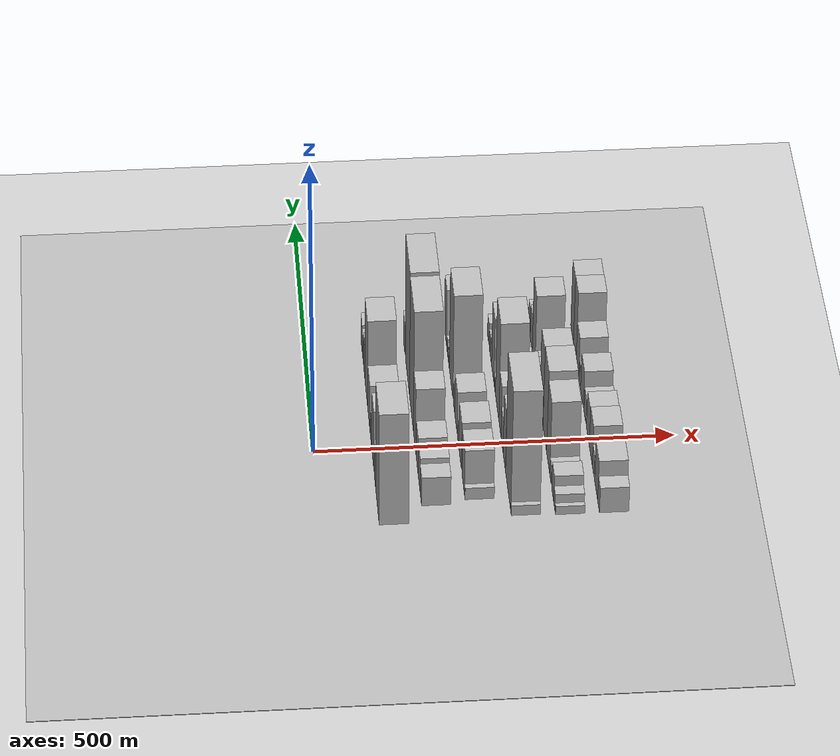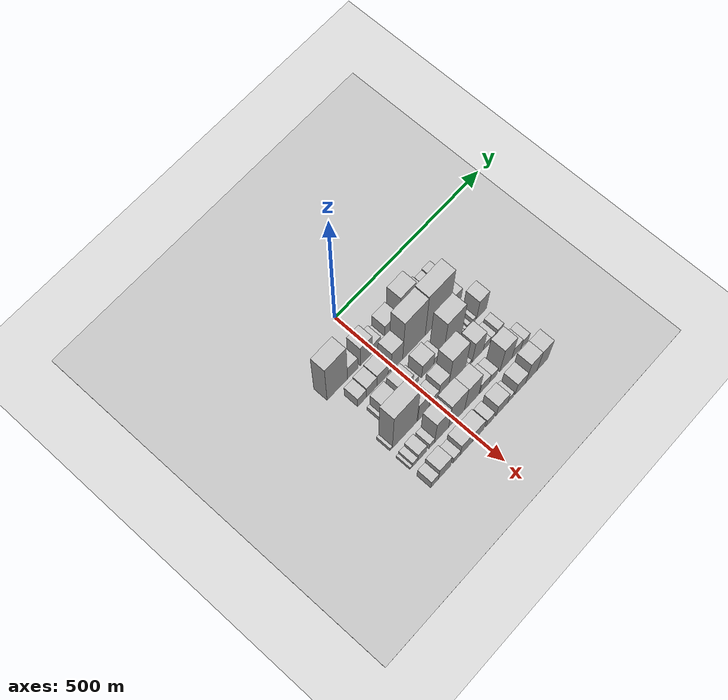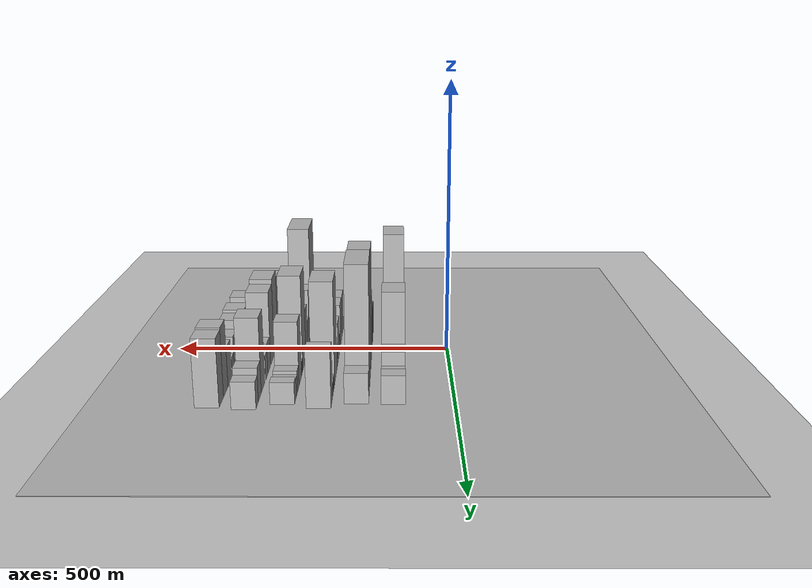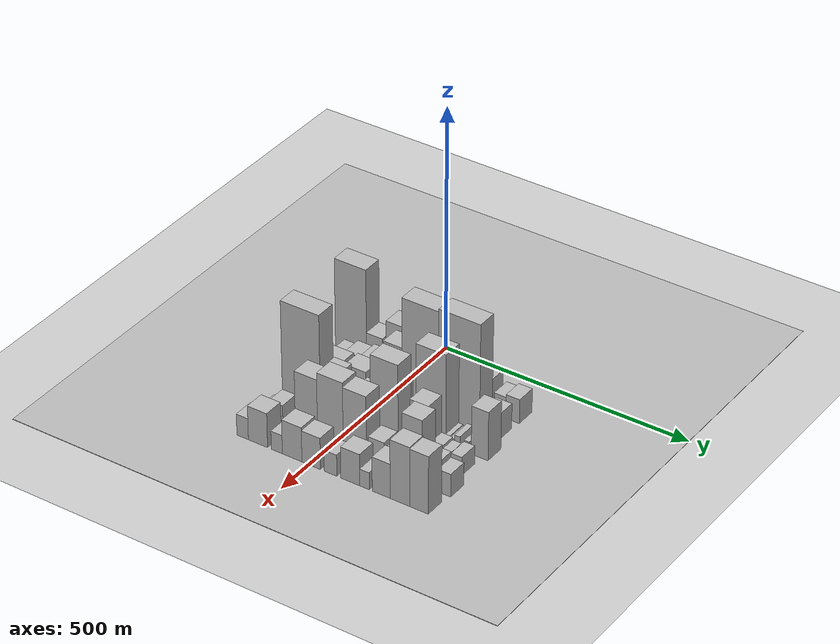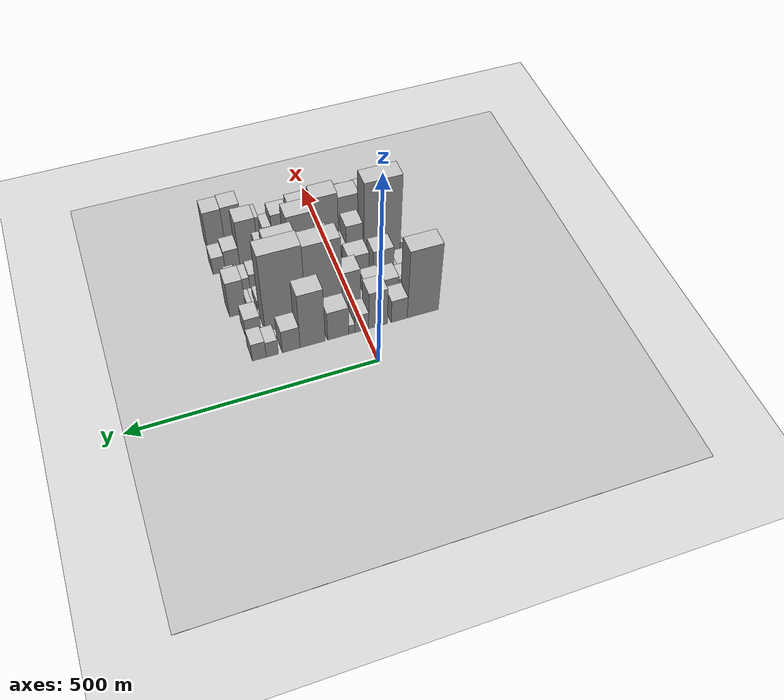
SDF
<sdf version="1.6">
 <world name="default">
  <include><name>ground_plane_1</name><uri>model://HANNAS_ground_plane</uri></include>
  <include>
   <name>ground_plane_2</name>
   <uri>model://HANNAS_ground_plane</uri>
   <pose>100 0 0  0 0 0</pose>
  </include>
  <model name="building_21">
   <static>1</static>
   <pose>100.0000 -122.6711 0 0.000000 0.000000 0.000000</pose>
   <link name="link">
    <pose>0 0 99.00 0 0 0</pose>
    <collision name="collision"><geometry><box><size>40.0000 66.9186 198.0000</size></box></geometry></collision>
    <visual name="visual">
     <cast_shadows>0</cast_shadows>
     <geometry><box><size>40.0000 66.9186 198.0000</size></box></geometry>
     <material>
      <script>
       <uri>model://HANNAS_wall/materials/scripts</uri>
       <uri>model://HANNAS_wall/materials/textures</uri>
       <name>vrc/HANNAS_wall</name>
      </script>
     </material>
    </visual>
   </link>
  </model>
  <model name="building_22">
   <static>1</static>
   <pose>100.0000 -72.0140 0 0.000000 0.000000 0.000000</pose>
   <link name="link">
    <pose>0 0 33.00 0 0 0</pose>
    <collision name="collision"><geometry><box><size>40.0000 34.3954 66.0000</size></box></geometry></collision>
    <visual name="visual">
     <cast_shadows>0</cast_shadows>
     <geometry><box><size>40.0000 34.3954 66.0000</size></box></geometry>
     <material>
      <script>
       <uri>model://HANNAS_wall/materials/scripts</uri>
       <uri>model://HANNAS_wall/materials/textures</uri>
       <name>vrc/HANNAS_wall</name>
      </script>
     </material>
    </visual>
   </link>
  </model>
  <model name="building_23">
   <static>1</static>
   <pose>100.0000 -27.0608 0 0.000000 0.000000 0.000000</pose>
   <link name="link">
    <pose>0 0 54.00 0 0 0</pose>
    <collision name="collision"><geometry><box><size>40.0000 39.5110 108.0000</size></box></geometry></collision>
    <visual name="visual">
     <cast_shadows>0</cast_shadows>
     <geometry><box><size>40.0000 39.5110 108.0000</size></box></geometry>
     <material>
      <script>
       <uri>model://HANNAS_wall/materials/scripts</uri>
       <uri>model://HANNAS_wall/materials/textures</uri>
       <name>vrc/HANNAS_wall</name>
      </script>
     </material>
    </visual>
   </link>
  </model>
  <model name="building_24">
   <static>1</static>
   <pose>100.0000 6.9616 0 0.000000 0.000000 0.000000</pose>
   <link name="link">
    <pose>0 0 25.50 0 0 0</pose>
    <collision name="collision"><geometry><box><size>40.0000 28.5338 51.0000</size></box></geometry></collision>
    <visual name="visual">
     <cast_shadows>0</cast_shadows>
     <geometry><box><size>40.0000 28.5338 51.0000</size></box></geometry>
     <material>
      <script>
       <uri>model://HANNAS_wall/materials/scripts</uri>
       <uri>model://HANNAS_wall/materials/textures</uri>
       <name>vrc/HANNAS_wall</name>
      </script>
     </material>
    </visual>
   </link>
  </model>
  <model name="building_25">
   <static>1</static>
   <pose>100.0000 27.7812 0 0.000000 0.000000 0.000000</pose>
   <link name="link">
    <pose>0 0 13.50 0 0 0</pose>
    <collision name="collision"><geometry><box><size>40.0000 13.1054 27.0000</size></box></geometry></collision>
    <visual name="visual">
     <cast_shadows>0</cast_shadows>
     <geometry><box><size>40.0000 13.1054 27.0000</size></box></geometry>
     <material>
      <script>
       <uri>model://HANNAS_wall/materials/scripts</uri>
       <uri>model://HANNAS_wall/materials/textures</uri>
       <name>vrc/HANNAS_wall</name>
      </script>
     </material>
    </visual>
   </link>
  </model>
  <model name="building_26">
   <static>1</static>
   <pose>100.0000 56.3703 0 0.000000 0.000000 0.000000</pose>
   <link name="link">
    <pose>0 0 42.00 0 0 0</pose>
    <collision name="collision"><geometry><box><size>40.0000 44.0729 84.0000</size></box></geometry></collision>
    <visual name="visual">
     <cast_shadows>0</cast_shadows>
     <geometry><box><size>40.0000 44.0729 84.0000</size></box></geometry>
     <material>
      <script>
       <uri>model://HANNAS_wall/materials/scripts</uri>
       <uri>model://HANNAS_wall/materials/textures</uri>
       <name>vrc/HANNAS_wall</name>
      </script>
     </material>
    </visual>
   </link>
  </model>
  <model name="building_27">
   <static>1</static>
   <pose>100.0000 109.1846 0 0.000000 0.000000 0.000000</pose>
   <link name="link">
    <pose>0 0 79.50 0 0 0</pose>
    <collision name="collision"><geometry><box><size>40.0000 51.5556 159.0000</size></box></geometry></collision>
    <visual name="visual">
     <cast_shadows>0</cast_shadows>
     <geometry><box><size>40.0000 51.5556 159.0000</size></box></geometry>
     <material>
      <script>
       <uri>model://HANNAS_wall/materials/scripts</uri>
       <uri>model://HANNAS_wall/materials/textures</uri>
       <name>vrc/HANNAS_wall</name>
      </script>
     </material>
    </visual>
   </link>
  </model>
  <model name="building_28">
   <static>1</static>
   <pose>100.0000 153.1105 0 0.000000 0.000000 0.000000</pose>
   <link name="link">
    <pose>0 0 33.00 0 0 0</pose>
    <collision name="collision"><geometry><box><size>40.0000 36.2963 66.0000</size></box></geometry></collision>
    <visual name="visual">
     <cast_shadows>0</cast_shadows>
     <geometry><box><size>40.0000 36.2963 66.0000</size></box></geometry>
     <material>
      <script>
       <uri>model://HANNAS_wall/materials/scripts</uri>
       <uri>model://HANNAS_wall/materials/textures</uri>
       <name>vrc/HANNAS_wall</name>
      </script>
     </material>
    </visual>
   </link>
  </model>
  <model name="building_29">
   <static>1</static>
   <pose>100.0000 191.5842 0 0.000000 0.000000 0.000000</pose>
   <link name="link">
    <pose>0 0 22.50 0 0 0</pose>
    <collision name="collision"><geometry><box><size>40.0000 24.6511 45.0000</size></box></geometry></collision>
    <visual name="visual">
     <cast_shadows>0</cast_shadows>
     <geometry><box><size>40.0000 24.6511 45.0000</size></box></geometry>
     <material>
      <script>
       <uri>model://HANNAS_wall/materials/scripts</uri>
       <uri>model://HANNAS_wall/materials/textures</uri>
       <name>vrc/HANNAS_wall</name>
      </script>
     </material>
    </visual>
   </link>
  </model>
  <model name="building_30">
   <static>1</static>
   <pose>100.0000 217.8195 0 0.000000 0.000000 0.000000</pose>
   <link name="link">
    <pose>0 0 25.50 0 0 0</pose>
    <collision name="collision"><geometry><box><size>40.0000 27.8194 51.0000</size></box></geometry></collision>
    <visual name="visual">
     <cast_shadows>0</cast_shadows>
     <geometry><box><size>40.0000 27.8194 51.0000</size></box></geometry>
     <material>
      <script>
       <uri>model://HANNAS_wall/materials/scripts</uri>
       <uri>model://HANNAS_wall/materials/textures</uri>
       <name>vrc/HANNAS_wall</name>
      </script>
     </material>
    </visual>
   </link>
  </model>
  <model name="building_80">
   <static>1</static>
   <pose>160.0000 -107.2405 0 0.000000 0.000000 0.000000</pose>
   <link name="link">
    <pose>0 0 25.50 0 0 0</pose>
    <collision name="collision"><geometry><box><size>40.0000 29.0225 51.0000</size></box></geometry></collision>
    <visual name="visual">
     <cast_shadows>0</cast_shadows>
     <geometry><box><size>40.0000 29.0225 51.0000</size></box></geometry>
     <material>
      <script>
       <uri>model://HANNAS_wall/materials/scripts</uri>
       <uri>model://HANNAS_wall/materials/textures</uri>
       <name>vrc/HANNAS_wall</name>
      </script>
     </material>
    </visual>
   </link>
  </model>
  <model name="building_81">
   <static>1</static>
   <pose>160.0000 -75.3001 0 0.000000 0.000000 0.000000</pose>
   <link name="link">
    <pose>0 0 30.00 0 0 0</pose>
    <collision name="collision"><geometry><box><size>40.0000 34.8581 60.0000</size></box></geometry></collision>
    <visual name="visual">
     <cast_shadows>0</cast_shadows>
     <geometry><box><size>40.0000 34.8581 60.0000</size></box></geometry>
     <material>
      <script>
       <uri>model://HANNAS_wall/materials/scripts</uri>
       <uri>model://HANNAS_wall/materials/textures</uri>
       <name>vrc/HANNAS_wall</name>
      </script>
     </material>
    </visual>
   </link>
  </model>
  <model name="building_82">
   <static>1</static>
   <pose>160.0000 -39.7103 0 0.000000 0.000000 0.000000</pose>
   <link name="link">
    <pose>0 0 33.00 0 0 0</pose>
    <collision name="collision"><geometry><box><size>40.0000 36.3216 66.0000</size></box></geometry></collision>
    <visual name="visual">
     <cast_shadows>0</cast_shadows>
     <geometry><box><size>40.0000 36.3216 66.0000</size></box></geometry>
     <material>
      <script>
       <uri>model://HANNAS_wall/materials/scripts</uri>
       <uri>model://HANNAS_wall/materials/textures</uri>
       <name>vrc/HANNAS_wall</name>
      </script>
     </material>
    </visual>
   </link>
  </model>
  <model name="building_83">
   <static>1</static>
   <pose>160.0000 -16.5000 0 0.000000 0.000000 0.000000</pose>
   <link name="link">
    <pose>0 0 10.50 0 0 0</pose>
    <collision name="collision"><geometry><box><size>40.0000 10.0989 21.0000</size></box></geometry></collision>
    <visual name="visual">
     <cast_shadows>0</cast_shadows>
     <geometry><box><size>40.0000 10.0989 21.0000</size></box></geometry>
     <material>
      <script>
       <uri>model://HANNAS_wall/materials/scripts</uri>
       <uri>model://HANNAS_wall/materials/textures</uri>
       <name>vrc/HANNAS_wall</name>
      </script>
     </material>
    </visual>
   </link>
  </model>
  <model name="building_84">
   <static>1</static>
   <pose>160.0000 8.0085 0 0.000000 0.000000 0.000000</pose>
   <link name="link">
    <pose>0 0 57.00 0 0 0</pose>
    <collision name="collision"><geometry><box><size>40.0000 38.9181 114.0000</size></box></geometry></collision>
    <visual name="visual">
     <cast_shadows>0</cast_shadows>
     <geometry><box><size>40.0000 38.9181 114.0000</size></box></geometry>
     <material>
      <script>
       <uri>model://HANNAS_wall/materials/scripts</uri>
       <uri>model://HANNAS_wall/materials/textures</uri>
       <name>vrc/HANNAS_wall</name>
      </script>
     </material>
    </visual>
   </link>
  </model>
  <model name="building_85">
   <static>1</static>
   <pose>160.0000 65.6322 0 0.000000 0.000000 0.000000</pose>
   <link name="link">
    <pose>0 0 109.50 0 0 0</pose>
    <collision name="collision"><geometry><box><size>40.0000 76.3292 219.0000</size></box></geometry></collision>
    <visual name="visual">
     <cast_shadows>0</cast_shadows>
     <geometry><box><size>40.0000 76.3292 219.0000</size></box></geometry>
     <material>
      <script>
       <uri>model://HANNAS_wall/materials/scripts</uri>
       <uri>model://HANNAS_wall/materials/textures</uri>
       <name>vrc/HANNAS_wall</name>
      </script>
     </material>
    </visual>
   </link>
  </model>
  <model name="building_86">
   <static>1</static>
   <pose>160.0000 146.3229 0 0.000000 0.000000 0.000000</pose>
   <link name="link">
    <pose>0 0 112.50 0 0 0</pose>
    <collision name="collision"><geometry><box><size>40.0000 85.0522 225.0000</size></box></geometry></collision>
    <visual name="visual">
     <cast_shadows>0</cast_shadows>
     <geometry><box><size>40.0000 85.0522 225.0000</size></box></geometry>
     <material>
      <script>
       <uri>model://HANNAS_wall/materials/scripts</uri>
       <uri>model://HANNAS_wall/materials/textures</uri>
       <name>vrc/HANNAS_wall</name>
      </script>
     </material>
    </visual>
   </link>
  </model>
  <model name="building_87">
   <static>1</static>
   <pose>160.0000 212.7443 0 0.000000 0.000000 0.000000</pose>
   <link name="link">
    <pose>0 0 27.00 0 0 0</pose>
    <collision name="collision"><geometry><box><size>40.0000 31.7906 54.0000</size></box></geometry></collision>
    <visual name="visual">
     <cast_shadows>0</cast_shadows>
     <geometry><box><size>40.0000 31.7906 54.0000</size></box></geometry>
     <material>
      <script>
       <uri>model://HANNAS_wall/materials/scripts</uri>
       <uri>model://HANNAS_wall/materials/textures</uri>
       <name>vrc/HANNAS_wall</name>
      </script>
     </material>
    </visual>
   </link>
  </model>
  <model name="building_130">
   <static>1</static>
   <pose>220.0000 -108.8532 0 0.000000 0.000000 0.000000</pose>
   <link name="link">
    <pose>0 0 10.50 0 0 0</pose>
    <collision name="collision"><geometry><box><size>40.0000 8.9380 21.0000</size></box></geometry></collision>
    <visual name="visual">
     <cast_shadows>0</cast_shadows>
     <geometry><box><size>40.0000 8.9380 21.0000</size></box></geometry>
     <material>
      <script>
       <uri>model://HANNAS_wall/materials/scripts</uri>
       <uri>model://HANNAS_wall/materials/textures</uri>
       <name>vrc/HANNAS_wall</name>
      </script>
     </material>
    </visual>
   </link>
  </model>
  <model name="building_131">
   <static>1</static>
   <pose>220.0000 -82.1359 0 0.000000 0.000000 0.000000</pose>
   <link name="link">
    <pose>0 0 40.50 0 0 0</pose>
    <collision name="collision"><geometry><box><size>40.0000 44.4966 81.0000</size></box></geometry></collision>
    <visual name="visual">
     <cast_shadows>0</cast_shadows>
     <geometry><box><size>40.0000 44.4966 81.0000</size></box></geometry>
     <material>
      <script>
       <uri>model://HANNAS_wall/materials/scripts</uri>
       <uri>model://HANNAS_wall/materials/textures</uri>
       <name>vrc/HANNAS_wall</name>
      </script>
     </material>
    </visual>
   </link>
  </model>
  <model name="building_132">
   <static>1</static>
   <pose>220.0000 -28.6846 0 0.000000 0.000000 0.000000</pose>
   <link name="link">
    <pose>0 0 42.00 0 0 0</pose>
    <collision name="collision"><geometry><box><size>40.0000 44.4060 84.0000</size></box></geometry></collision>
    <visual name="visual">
     <cast_shadows>0</cast_shadows>
     <geometry><box><size>40.0000 44.4060 84.0000</size></box></geometry>
     <material>
      <script>
       <uri>model://HANNAS_wall/materials/scripts</uri>
       <uri>model://HANNAS_wall/materials/textures</uri>
       <name>vrc/HANNAS_wall</name>
      </script>
     </material>
    </visual>
   </link>
  </model>
  <model name="building_133">
   <static>1</static>
   <pose>220.0000 3.2598 0 0.000000 0.000000 0.000000</pose>
   <link name="link">
    <pose>0 0 16.50 0 0 0</pose>
    <collision name="collision"><geometry><box><size>40.0000 19.4828 33.0000</size></box></geometry></collision>
    <visual name="visual">
     <cast_shadows>0</cast_shadows>
     <geometry><box><size>40.0000 19.4828 33.0000</size></box></geometry>
     <material>
      <script>
       <uri>model://HANNAS_wall/materials/scripts</uri>
       <uri>model://HANNAS_wall/materials/textures</uri>
       <name>vrc/HANNAS_wall</name>
      </script>
     </material>
    </visual>
   </link>
  </model>
  <model name="building_134">
   <static>1</static>
   <pose>220.0000 43.4957 0 0.000000 0.000000 0.000000</pose>
   <link name="link">
    <pose>0 0 37.50 0 0 0</pose>
    <collision name="collision"><geometry><box><size>40.0000 40.9889 75.0000</size></box></geometry></collision>
    <visual name="visual">
     <cast_shadows>0</cast_shadows>
     <geometry><box><size>40.0000 40.9889 75.0000</size></box></geometry>
     <material>
      <script>
       <uri>model://HANNAS_wall/materials/scripts</uri>
       <uri>model://HANNAS_wall/materials/textures</uri>
       <name>vrc/HANNAS_wall</name>
      </script>
     </material>
    </visual>
   </link>
  </model>
  <model name="building_135">
   <static>1</static>
   <pose>220.0000 75.6049 0 0.000000 0.000000 0.000000</pose>
   <link name="link">
    <pose>0 0 19.50 0 0 0</pose>
    <collision name="collision"><geometry><box><size>40.0000 23.2297 39.0000</size></box></geometry></collision>
    <visual name="visual">
     <cast_shadows>0</cast_shadows>
     <geometry><box><size>40.0000 23.2297 39.0000</size></box></geometry>
     <material>
      <script>
       <uri>model://HANNAS_wall/materials/scripts</uri>
       <uri>model://HANNAS_wall/materials/textures</uri>
       <name>vrc/HANNAS_wall</name>
      </script>
     </material>
    </visual>
   </link>
  </model>
  <model name="building_136">
   <static>1</static>
   <pose>220.0000 128.1424 0 0.000000 0.000000 0.000000</pose>
   <link name="link">
    <pose>0 0 93.00 0 0 0</pose>
    <collision name="collision"><geometry><box><size>40.0000 61.8452 186.0000</size></box></geometry></collision>
    <visual name="visual">
     <cast_shadows>0</cast_shadows>
     <geometry><box><size>40.0000 61.8452 186.0000</size></box></geometry>
     <material>
      <script>
       <uri>model://HANNAS_wall/materials/scripts</uri>
       <uri>model://HANNAS_wall/materials/textures</uri>
       <name>vrc/HANNAS_wall</name>
      </script>
     </material>
    </visual>
   </link>
  </model>
  <model name="building_137">
   <static>1</static>
   <pose>220.0000 163.6184 0 0.000000 0.000000 0.000000</pose>
   <link name="link">
    <pose>0 0 10.50 0 0 0</pose>
    <collision name="collision"><geometry><box><size>40.0000 9.1068 21.0000</size></box></geometry></collision>
    <visual name="visual">
     <cast_shadows>0</cast_shadows>
     <geometry><box><size>40.0000 9.1068 21.0000</size></box></geometry>
     <material>
      <script>
       <uri>model://HANNAS_wall/materials/scripts</uri>
       <uri>model://HANNAS_wall/materials/textures</uri>
       <name>vrc/HANNAS_wall</name>
      </script>
     </material>
    </visual>
   </link>
  </model>
  <model name="building_138">
   <static>1</static>
   <pose>220.0000 172.5793 0 0.000000 0.000000 0.000000</pose>
   <link name="link">
    <pose>0 0 9.00 0 0 0</pose>
    <collision name="collision"><geometry><box><size>40.0000 8.8150 18.0000</size></box></geometry></collision>
    <visual name="visual">
     <cast_shadows>0</cast_shadows>
     <geometry><box><size>40.0000 8.8150 18.0000</size></box></geometry>
     <material>
      <script>
       <uri>model://HANNAS_wall/materials/scripts</uri>
       <uri>model://HANNAS_wall/materials/textures</uri>
       <name>vrc/HANNAS_wall</name>
      </script>
     </material>
    </visual>
   </link>
  </model>
  <model name="building_139">
   <static>1</static>
   <pose>220.0000 182.4787 0 0.000000 0.000000 0.000000</pose>
   <link name="link">
    <pose>0 0 13.50 0 0 0</pose>
    <collision name="collision"><geometry><box><size>40.0000 10.9837 27.0000</size></box></geometry></collision>
    <visual name="visual">
     <cast_shadows>0</cast_shadows>
     <geometry><box><size>40.0000 10.9837 27.0000</size></box></geometry>
     <material>
      <script>
       <uri>model://HANNAS_wall/materials/scripts</uri>
       <uri>model://HANNAS_wall/materials/textures</uri>
       <name>vrc/HANNAS_wall</name>
      </script>
     </material>
    </visual>
   </link>
  </model>
  <model name="building_140">
   <static>1</static>
   <pose>220.0000 202.1758 0 0.000000 0.000000 0.000000</pose>
   <link name="link">
    <pose>0 0 12.00 0 0 0</pose>
    <collision name="collision"><geometry><box><size>40.0000 10.4106 24.0000</size></box></geometry></collision>
    <visual name="visual">
     <cast_shadows>0</cast_shadows>
     <geometry><box><size>40.0000 10.4106 24.0000</size></box></geometry>
     <material>
      <script>
       <uri>model://HANNAS_wall/materials/scripts</uri>
       <uri>model://HANNAS_wall/materials/textures</uri>
       <name>vrc/HANNAS_wall</name>
      </script>
     </material>
    </visual>
   </link>
  </model>
  <model name="building_141">
   <static>1</static>
   <pose>220.0000 228.5031 0 0.000000 0.000000 0.000000</pose>
   <link name="link">
    <pose>0 0 51.00 0 0 0</pose>
    <collision name="collision"><geometry><box><size>40.0000 34.2440 102.0000</size></box></geometry></collision>
    <visual name="visual">
     <cast_shadows>0</cast_shadows>
     <geometry><box><size>40.0000 34.2440 102.0000</size></box></geometry>
     <material>
      <script>
       <uri>model://HANNAS_wall/materials/scripts</uri>
       <uri>model://HANNAS_wall/materials/textures</uri>
       <name>vrc/HANNAS_wall</name>
      </script>
     </material>
    </visual>
   </link>
  </model>
  <model name="building_182">
   <static>1</static>
   <pose>280.0000 -145.5922 0 0.000000 0.000000 0.000000</pose>
   <link name="link">
    <pose>0 0 9.00 0 0 0</pose>
    <collision name="collision"><geometry><box><size>40.0000 7.6780 18.0000</size></box></geometry></collision>
    <visual name="visual">
     <cast_shadows>0</cast_shadows>
     <geometry><box><size>40.0000 7.6780 18.0000</size></box></geometry>
     <material>
      <script>
       <uri>model://HANNAS_wall/materials/scripts</uri>
       <uri>model://HANNAS_wall/materials/textures</uri>
       <name>vrc/HANNAS_wall</name>
      </script>
     </material>
    </visual>
   </link>
  </model>
  <model name="building_183">
   <static>1</static>
   <pose>280.0000 -101.3900 0 0.000000 0.000000 0.000000</pose>
   <link name="link">
    <pose>0 0 108.00 0 0 0</pose>
    <collision name="collision"><geometry><box><size>40.0000 80.7264 216.0000</size></box></geometry></collision>
    <visual name="visual">
     <cast_shadows>0</cast_shadows>
     <geometry><box><size>40.0000 80.7264 216.0000</size></box></geometry>
     <material>
      <script>
       <uri>model://HANNAS_wall/materials/scripts</uri>
       <uri>model://HANNAS_wall/materials/textures</uri>
       <name>vrc/HANNAS_wall</name>
      </script>
     </material>
    </visual>
   </link>
  </model>
  <model name="building_184">
   <static>1</static>
   <pose>280.0000 -39.8998 0 0.000000 0.000000 0.000000</pose>
   <link name="link">
    <pose>0 0 54.00 0 0 0</pose>
    <collision name="collision"><geometry><box><size>40.0000 36.2539 108.0000</size></box></geometry></collision>
    <visual name="visual">
     <cast_shadows>0</cast_shadows>
     <geometry><box><size>40.0000 36.2539 108.0000</size></box></geometry>
     <material>
      <script>
       <uri>model://HANNAS_wall/materials/scripts</uri>
       <uri>model://HANNAS_wall/materials/textures</uri>
       <name>vrc/HANNAS_wall</name>
      </script>
     </material>
    </visual>
   </link>
  </model>
  <model name="building_185">
   <static>1</static>
   <pose>280.0000 -5.5252 0 0.000000 0.000000 0.000000</pose>
   <link name="link">
    <pose>0 0 28.50 0 0 0</pose>
    <collision name="collision"><geometry><box><size>40.0000 32.4953 57.0000</size></box></geometry></collision>
    <visual name="visual">
     <cast_shadows>0</cast_shadows>
     <geometry><box><size>40.0000 32.4953 57.0000</size></box></geometry>
     <material>
      <script>
       <uri>model://HANNAS_wall/materials/scripts</uri>
       <uri>model://HANNAS_wall/materials/textures</uri>
       <name>vrc/HANNAS_wall</name>
      </script>
     </material>
    </visual>
   </link>
  </model>
  <model name="building_186">
   <static>1</static>
   <pose>280.0000 27.4095 0 0.000000 0.000000 0.000000</pose>
   <link name="link">
    <pose>0 0 46.50 0 0 0</pose>
    <collision name="collision"><geometry><box><size>40.0000 33.3740 93.0000</size></box></geometry></collision>
    <visual name="visual">
     <cast_shadows>0</cast_shadows>
     <geometry><box><size>40.0000 33.3740 93.0000</size></box></geometry>
     <material>
      <script>
       <uri>model://HANNAS_wall/materials/scripts</uri>
       <uri>model://HANNAS_wall/materials/textures</uri>
       <name>vrc/HANNAS_wall</name>
      </script>
     </material>
    </visual>
   </link>
  </model>
  <model name="building_187">
   <static>1</static>
   <pose>280.0000 72.6799 0 0.000000 0.000000 0.000000</pose>
   <link name="link">
    <pose>0 0 88.50 0 0 0</pose>
    <collision name="collision"><geometry><box><size>40.0000 57.1669 177.0000</size></box></geometry></collision>
    <visual name="visual">
     <cast_shadows>0</cast_shadows>
     <geometry><box><size>40.0000 57.1669 177.0000</size></box></geometry>
     <material>
      <script>
       <uri>model://HANNAS_wall/materials/scripts</uri>
       <uri>model://HANNAS_wall/materials/textures</uri>
       <name>vrc/HANNAS_wall</name>
      </script>
     </material>
    </visual>
   </link>
  </model>
  <model name="building_188">
   <static>1</static>
   <pose>280.0000 106.4608 0 0.000000 0.000000 0.000000</pose>
   <link name="link">
    <pose>0 0 12.00 0 0 0</pose>
    <collision name="collision"><geometry><box><size>40.0000 10.3948 24.0000</size></box></geometry></collision>
    <visual name="visual">
     <cast_shadows>0</cast_shadows>
     <geometry><box><size>40.0000 10.3948 24.0000</size></box></geometry>
     <material>
      <script>
       <uri>model://HANNAS_wall/materials/scripts</uri>
       <uri>model://HANNAS_wall/materials/textures</uri>
       <name>vrc/HANNAS_wall</name>
      </script>
     </material>
    </visual>
   </link>
  </model>
  <model name="building_189">
   <static>1</static>
   <pose>280.0000 117.0412 0 0.000000 0.000000 0.000000</pose>
   <link name="link">
    <pose>0 0 12.00 0 0 0</pose>
    <collision name="collision"><geometry><box><size>40.0000 10.7661 24.0000</size></box></geometry></collision>
    <visual name="visual">
     <cast_shadows>0</cast_shadows>
     <geometry><box><size>40.0000 10.7661 24.0000</size></box></geometry>
     <material>
      <script>
       <uri>model://HANNAS_wall/materials/scripts</uri>
       <uri>model://HANNAS_wall/materials/textures</uri>
       <name>vrc/HANNAS_wall</name>
      </script>
     </material>
    </visual>
   </link>
  </model>
  <model name="building_190">
   <static>1</static>
   <pose>280.0000 144.6446 0 0.000000 0.000000 0.000000</pose>
   <link name="link">
    <pose>0 0 58.50 0 0 0</pose>
    <collision name="collision"><geometry><box><size>40.0000 38.4407 117.0000</size></box></geometry></collision>
    <visual name="visual">
     <cast_shadows>0</cast_shadows>
     <geometry><box><size>40.0000 38.4407 117.0000</size></box></geometry>
     <material>
      <script>
       <uri>model://HANNAS_wall/materials/scripts</uri>
       <uri>model://HANNAS_wall/materials/textures</uri>
       <name>vrc/HANNAS_wall</name>
      </script>
     </material>
    </visual>
   </link>
  </model>
  <model name="building_191">
   <static>1</static>
   <pose>280.0000 175.4887 0 0.000000 0.000000 0.000000</pose>
   <link name="link">
    <pose>0 0 19.50 0 0 0</pose>
    <collision name="collision"><geometry><box><size>40.0000 23.2476 39.0000</size></box></geometry></collision>
    <visual name="visual">
     <cast_shadows>0</cast_shadows>
     <geometry><box><size>40.0000 23.2476 39.0000</size></box></geometry>
     <material>
      <script>
       <uri>model://HANNAS_wall/materials/scripts</uri>
       <uri>model://HANNAS_wall/materials/textures</uri>
       <name>vrc/HANNAS_wall</name>
      </script>
     </material>
    </visual>
   </link>
  </model>
  <model name="building_192">
   <static>1</static>
   <pose>280.0000 196.0833 0 0.000000 0.000000 0.000000</pose>
   <link name="link">
    <pose>0 0 16.50 0 0 0</pose>
    <collision name="collision"><geometry><box><size>40.0000 17.9414 33.0000</size></box></geometry></collision>
    <visual name="visual">
     <cast_shadows>0</cast_shadows>
     <geometry><box><size>40.0000 17.9414 33.0000</size></box></geometry>
     <material>
      <script>
       <uri>model://HANNAS_wall/materials/scripts</uri>
       <uri>model://HANNAS_wall/materials/textures</uri>
       <name>vrc/HANNAS_wall</name>
      </script>
     </material>
    </visual>
   </link>
  </model>
  <model name="building_193">
   <static>1</static>
   <pose>280.0000 220.9210 0 0.000000 0.000000 0.000000</pose>
   <link name="link">
    <pose>0 0 19.50 0 0 0</pose>
    <collision name="collision"><geometry><box><size>40.0000 21.7341 39.0000</size></box></geometry></collision>
    <visual name="visual">
     <cast_shadows>0</cast_shadows>
     <geometry><box><size>40.0000 21.7341 39.0000</size></box></geometry>
     <material>
      <script>
       <uri>model://HANNAS_wall/materials/scripts</uri>
       <uri>model://HANNAS_wall/materials/textures</uri>
       <name>vrc/HANNAS_wall</name>
      </script>
     </material>
    </visual>
   </link>
  </model>
  <model name="building_241">
   <static>1</static>
   <pose>340.0000 -147.9523 0 0.000000 0.000000 0.000000</pose>
   <link name="link">
    <pose>0 0 7.50 0 0 0</pose>
    <collision name="collision"><geometry><box><size>40.0000 7.4632 15.0000</size></box></geometry></collision>
    <visual name="visual">
     <cast_shadows>0</cast_shadows>
     <geometry><box><size>40.0000 7.4632 15.0000</size></box></geometry>
     <material>
      <script>
       <uri>model://HANNAS_wall/materials/scripts</uri>
       <uri>model://HANNAS_wall/materials/textures</uri>
       <name>vrc/HANNAS_wall</name>
      </script>
     </material>
    </visual>
   </link>
  </model>
  <model name="building_242">
   <static>1</static>
   <pose>340.0000 -135.4093 0 0.000000 0.000000 0.000000</pose>
   <link name="link">
    <pose>0 0 15.00 0 0 0</pose>
    <collision name="collision"><geometry><box><size>40.0000 17.6228 30.0000</size></box></geometry></collision>
    <visual name="visual">
     <cast_shadows>0</cast_shadows>
     <geometry><box><size>40.0000 17.6228 30.0000</size></box></geometry>
     <material>
      <script>
       <uri>model://HANNAS_wall/materials/scripts</uri>
       <uri>model://HANNAS_wall/materials/textures</uri>
       <name>vrc/HANNAS_wall</name>
      </script>
     </material>
    </visual>
   </link>
  </model>
  <model name="building_243">
   <static>1</static>
   <pose>340.0000 -112.2129 0 0.000000 0.000000 0.000000</pose>
   <link name="link">
    <pose>0 0 24.00 0 0 0</pose>
    <collision name="collision"><geometry><box><size>40.0000 28.7699 48.0000</size></box></geometry></collision>
    <visual name="visual">
     <cast_shadows>0</cast_shadows>
     <geometry><box><size>40.0000 28.7699 48.0000</size></box></geometry>
     <material>
      <script>
       <uri>model://HANNAS_wall/materials/scripts</uri>
       <uri>model://HANNAS_wall/materials/textures</uri>
       <name>vrc/HANNAS_wall</name>
      </script>
     </material>
    </visual>
   </link>
  </model>
  <model name="building_244">
   <static>1</static>
   <pose>340.0000 -80.0050 0 0.000000 0.000000 0.000000</pose>
   <link name="link">
    <pose>0 0 16.50 0 0 0</pose>
    <collision name="collision"><geometry><box><size>40.0000 17.6459 33.0000</size></box></geometry></collision>
    <visual name="visual">
     <cast_shadows>0</cast_shadows>
     <geometry><box><size>40.0000 17.6459 33.0000</size></box></geometry>
     <material>
      <script>
       <uri>model://HANNAS_wall/materials/scripts</uri>
       <uri>model://HANNAS_wall/materials/textures</uri>
       <name>vrc/HANNAS_wall</name>
      </script>
     </material>
    </visual>
   </link>
  </model>
  <model name="building_245">
   <static>1</static>
   <pose>340.0000 -47.7893 0 0.000000 0.000000 0.000000</pose>
   <link name="link">
    <pose>0 0 66.00 0 0 0</pose>
    <collision name="collision"><geometry><box><size>40.0000 46.7857 132.0000</size></box></geometry></collision>
    <visual name="visual">
     <cast_shadows>0</cast_shadows>
     <geometry><box><size>40.0000 46.7857 132.0000</size></box></geometry>
     <material>
      <script>
       <uri>model://HANNAS_wall/materials/scripts</uri>
       <uri>model://HANNAS_wall/materials/textures</uri>
       <name>vrc/HANNAS_wall</name>
      </script>
     </material>
    </visual>
   </link>
  </model>
  <model name="building_246">
   <static>1</static>
   <pose>340.0000 2.3658 0 0.000000 0.000000 0.000000</pose>
   <link name="link">
    <pose>0 0 73.50 0 0 0</pose>
    <collision name="collision"><geometry><box><size>40.0000 53.5245 147.0000</size></box></geometry></collision>
    <visual name="visual">
     <cast_shadows>0</cast_shadows>
     <geometry><box><size>40.0000 53.5245 147.0000</size></box></geometry>
     <material>
      <script>
       <uri>model://HANNAS_wall/materials/scripts</uri>
       <uri>model://HANNAS_wall/materials/textures</uri>
       <name>vrc/HANNAS_wall</name>
      </script>
     </material>
    </visual>
   </link>
  </model>
  <model name="building_247">
   <static>1</static>
   <pose>340.0000 53.1797 0 0.000000 0.000000 0.000000</pose>
   <link name="link">
    <pose>0 0 69.00 0 0 0</pose>
    <collision name="collision"><geometry><box><size>40.0000 48.1033 138.0000</size></box></geometry></collision>
    <visual name="visual">
     <cast_shadows>0</cast_shadows>
     <geometry><box><size>40.0000 48.1033 138.0000</size></box></geometry>
     <material>
      <script>
       <uri>model://HANNAS_wall/materials/scripts</uri>
       <uri>model://HANNAS_wall/materials/textures</uri>
       <name>vrc/HANNAS_wall</name>
      </script>
     </material>
    </visual>
   </link>
  </model>
  <model name="building_248">
   <static>1</static>
   <pose>340.0000 97.6292 0 0.000000 0.000000 0.000000</pose>
   <link name="link">
    <pose>0 0 28.50 0 0 0</pose>
    <collision name="collision"><geometry><box><size>40.0000 32.7957 57.0000</size></box></geometry></collision>
    <visual name="visual">
     <cast_shadows>0</cast_shadows>
     <geometry><box><size>40.0000 32.7957 57.0000</size></box></geometry>
     <material>
      <script>
       <uri>model://HANNAS_wall/materials/scripts</uri>
       <uri>model://HANNAS_wall/materials/textures</uri>
       <name>vrc/HANNAS_wall</name>
      </script>
     </material>
    </visual>
   </link>
  </model>
  <model name="building_249">
   <static>1</static>
   <pose>340.0000 126.9893 0 0.000000 0.000000 0.000000</pose>
   <link name="link">
    <pose>0 0 22.50 0 0 0</pose>
    <collision name="collision"><geometry><box><size>40.0000 25.9244 45.0000</size></box></geometry></collision>
    <visual name="visual">
     <cast_shadows>0</cast_shadows>
     <geometry><box><size>40.0000 25.9244 45.0000</size></box></geometry>
     <material>
      <script>
       <uri>model://HANNAS_wall/materials/scripts</uri>
       <uri>model://HANNAS_wall/materials/textures</uri>
       <name>vrc/HANNAS_wall</name>
      </script>
     </material>
    </visual>
   </link>
  </model>
  <model name="building_250">
   <static>1</static>
   <pose>340.0000 170.8191 0 0.000000 0.000000 0.000000</pose>
   <link name="link">
    <pose>0 0 67.50 0 0 0</pose>
    <collision name="collision"><geometry><box><size>40.0000 41.7352 135.0000</size></box></geometry></collision>
    <visual name="visual">
     <cast_shadows>0</cast_shadows>
     <geometry><box><size>40.0000 41.7352 135.0000</size></box></geometry>
     <material>
      <script>
       <uri>model://HANNAS_wall/materials/scripts</uri>
       <uri>model://HANNAS_wall/materials/textures</uri>
       <name>vrc/HANNAS_wall</name>
      </script>
     </material>
    </visual>
   </link>
  </model>
  <model name="building_251">
   <static>1</static>
   <pose>340.0000 207.5169 0 0.000000 0.000000 0.000000</pose>
   <link name="link">
    <pose>0 0 30.00 0 0 0</pose>
    <collision name="collision"><geometry><box><size>40.0000 31.6603 60.0000</size></box></geometry></collision>
    <visual name="visual">
     <cast_shadows>0</cast_shadows>
     <geometry><box><size>40.0000 31.6603 60.0000</size></box></geometry>
     <material>
      <script>
       <uri>model://HANNAS_wall/materials/scripts</uri>
       <uri>model://HANNAS_wall/materials/textures</uri>
       <name>vrc/HANNAS_wall</name>
      </script>
     </material>
    </visual>
   </link>
  </model>
  <model name="building_252">
   <static>1</static>
   <pose>340.0000 236.3834 0 0.000000 0.000000 0.000000</pose>
   <link name="link">
    <pose>0 0 24.00 0 0 0</pose>
    <collision name="collision"><geometry><box><size>40.0000 26.0727 48.0000</size></box></geometry></collision>
    <visual name="visual">
     <cast_shadows>0</cast_shadows>
     <geometry><box><size>40.0000 26.0727 48.0000</size></box></geometry>
     <material>
      <script>
       <uri>model://HANNAS_wall/materials/scripts</uri>
       <uri>model://HANNAS_wall/materials/textures</uri>
       <name>vrc/HANNAS_wall</name>
      </script>
     </material>
    </visual>
   </link>
  </model>
  <model name="building_298">
   <static>1</static>
   <pose>400.0000 -139.6569 0 0.000000 0.000000 0.000000</pose>
   <link name="link">
    <pose>0 0 22.50 0 0 0</pose>
    <collision name="collision"><geometry><box><size>40.0000 24.4437 45.0000</size></box></geometry></collision>
    <visual name="visual">
     <cast_shadows>0</cast_shadows>
     <geometry><box><size>40.0000 24.4437 45.0000</size></box></geometry>
     <material>
      <script>
       <uri>model://HANNAS_wall/materials/scripts</uri>
       <uri>model://HANNAS_wall/materials/textures</uri>
       <name>vrc/HANNAS_wall</name>
      </script>
     </material>
    </visual>
   </link>
  </model>
  <model name="building_299">
   <static>1</static>
   <pose>400.0000 -107.1303 0 0.000000 0.000000 0.000000</pose>
   <link name="link">
    <pose>0 0 36.00 0 0 0</pose>
    <collision name="collision"><geometry><box><size>40.0000 40.6094 72.0000</size></box></geometry></collision>
    <visual name="visual">
     <cast_shadows>0</cast_shadows>
     <geometry><box><size>40.0000 40.6094 72.0000</size></box></geometry>
     <material>
      <script>
       <uri>model://HANNAS_wall/materials/scripts</uri>
       <uri>model://HANNAS_wall/materials/textures</uri>
       <name>vrc/HANNAS_wall</name>
      </script>
     </material>
    </visual>
   </link>
  </model>
  <model name="building_300">
   <static>1</static>
   <pose>400.0000 -67.2538 0 0.000000 0.000000 0.000000</pose>
   <link name="link">
    <pose>0 0 19.50 0 0 0</pose>
    <collision name="collision"><geometry><box><size>40.0000 23.1436 39.0000</size></box></geometry></collision>
    <visual name="visual">
     <cast_shadows>0</cast_shadows>
     <geometry><box><size>40.0000 23.1436 39.0000</size></box></geometry>
     <material>
      <script>
       <uri>model://HANNAS_wall/materials/scripts</uri>
       <uri>model://HANNAS_wall/materials/textures</uri>
       <name>vrc/HANNAS_wall</name>
      </script>
     </material>
    </visual>
   </link>
  </model>
  <model name="building_301">
   <static>1</static>
   <pose>400.0000 -35.1662 0 0.000000 0.000000 0.000000</pose>
   <link name="link">
    <pose>0 0 36.00 0 0 0</pose>
    <collision name="collision"><geometry><box><size>40.0000 41.0316 72.0000</size></box></geometry></collision>
    <visual name="visual">
     <cast_shadows>0</cast_shadows>
     <geometry><box><size>40.0000 41.0316 72.0000</size></box></geometry>
     <material>
      <script>
       <uri>model://HANNAS_wall/materials/scripts</uri>
       <uri>model://HANNAS_wall/materials/textures</uri>
       <name>vrc/HANNAS_wall</name>
      </script>
     </material>
    </visual>
   </link>
  </model>
  <model name="building_302">
   <static>1</static>
   <pose>400.0000 4.6912 0 0.000000 0.000000 0.000000</pose>
   <link name="link">
    <pose>0 0 33.00 0 0 0</pose>
    <collision name="collision"><geometry><box><size>40.0000 38.6834 66.0000</size></box></geometry></collision>
    <visual name="visual">
     <cast_shadows>0</cast_shadows>
     <geometry><box><size>40.0000 38.6834 66.0000</size></box></geometry>
     <material>
      <script>
       <uri>model://HANNAS_wall/materials/scripts</uri>
       <uri>model://HANNAS_wall/materials/textures</uri>
       <name>vrc/HANNAS_wall</name>
      </script>
     </material>
    </visual>
   </link>
  </model>
  <model name="building_303">
   <static>1</static>
   <pose>400.0000 44.9970 0 0.000000 0.000000 0.000000</pose>
   <link name="link">
    <pose>0 0 22.50 0 0 0</pose>
    <collision name="collision"><geometry><box><size>40.0000 25.9282 45.0000</size></box></geometry></collision>
    <visual name="visual">
     <cast_shadows>0</cast_shadows>
     <geometry><box><size>40.0000 25.9282 45.0000</size></box></geometry>
     <material>
      <script>
       <uri>model://HANNAS_wall/materials/scripts</uri>
       <uri>model://HANNAS_wall/materials/textures</uri>
       <name>vrc/HANNAS_wall</name>
      </script>
     </material>
    </visual>
   </link>
  </model>
  <model name="building_304">
   <static>1</static>
   <pose>400.0000 85.6388 0 0.000000 0.000000 0.000000</pose>
   <link name="link">
    <pose>0 0 33.00 0 0 0</pose>
    <collision name="collision"><geometry><box><size>40.0000 39.3554 66.0000</size></box></geometry></collision>
    <visual name="visual">
     <cast_shadows>0</cast_shadows>
     <geometry><box><size>40.0000 39.3554 66.0000</size></box></geometry>
     <material>
      <script>
       <uri>model://HANNAS_wall/materials/scripts</uri>
       <uri>model://HANNAS_wall/materials/textures</uri>
       <name>vrc/HANNAS_wall</name>
      </script>
     </material>
    </visual>
   </link>
  </model>
  <model name="building_305">
   <static>1</static>
   <pose>400.0000 115.0211 0 0.000000 0.000000 0.000000</pose>
   <link name="link">
    <pose>0 0 18.00 0 0 0</pose>
    <collision name="collision"><geometry><box><size>40.0000 19.4092 36.0000</size></box></geometry></collision>
    <visual name="visual">
     <cast_shadows>0</cast_shadows>
     <geometry><box><size>40.0000 19.4092 36.0000</size></box></geometry>
     <material>
      <script>
       <uri>model://HANNAS_wall/materials/scripts</uri>
       <uri>model://HANNAS_wall/materials/textures</uri>
       <name>vrc/HANNAS_wall</name>
      </script>
     </material>
    </visual>
   </link>
  </model>
  <model name="building_306">
   <static>1</static>
   <pose>400.0000 148.9520 0 0.000000 0.000000 0.000000</pose>
   <link name="link">
    <pose>0 0 36.00 0 0 0</pose>
    <collision name="collision"><geometry><box><size>40.0000 36.4525 72.0000</size></box></geometry></collision>
    <visual name="visual">
     <cast_shadows>0</cast_shadows>
     <geometry><box><size>40.0000 36.4525 72.0000</size></box></geometry>
     <material>
      <script>
       <uri>model://HANNAS_wall/materials/scripts</uri>
       <uri>model://HANNAS_wall/materials/textures</uri>
       <name>vrc/HANNAS_wall</name>
      </script>
     </material>
    </visual>
   </link>
  </model>
  <model name="building_307">
   <static>1</static>
   <pose>400.0000 186.9727 0 0.000000 0.000000 0.000000</pose>
   <link name="link">
    <pose>0 0 61.50 0 0 0</pose>
    <collision name="collision"><geometry><box><size>40.0000 39.5890 123.0000</size></box></geometry></collision>
    <visual name="visual">
     <cast_shadows>0</cast_shadows>
     <geometry><box><size>40.0000 39.5890 123.0000</size></box></geometry>
     <material>
      <script>
       <uri>model://HANNAS_wall/materials/scripts</uri>
       <uri>model://HANNAS_wall/materials/textures</uri>
       <name>vrc/HANNAS_wall</name>
      </script>
     </material>
    </visual>
   </link>
  </model>
  <model name="building_308">
   <static>1</static>
   <pose>400.0000 225.7302 0 0.000000 0.000000 0.000000</pose>
   <link name="link">
    <pose>0 0 60.00 0 0 0</pose>
    <collision name="collision"><geometry><box><size>40.0000 37.9260 120.0000</size></box></geometry></collision>
    <visual name="visual">
     <cast_shadows>0</cast_shadows>
     <geometry><box><size>40.0000 37.9260 120.0000</size></box></geometry>
     <material>
      <script>
       <uri>model://HANNAS_wall/materials/scripts</uri>
       <uri>model://HANNAS_wall/materials/textures</uri>
       <name>vrc/HANNAS_wall</name>
      </script>
     </material>
    </visual>
   </link>
  </model>
 </world>
</sdf>
